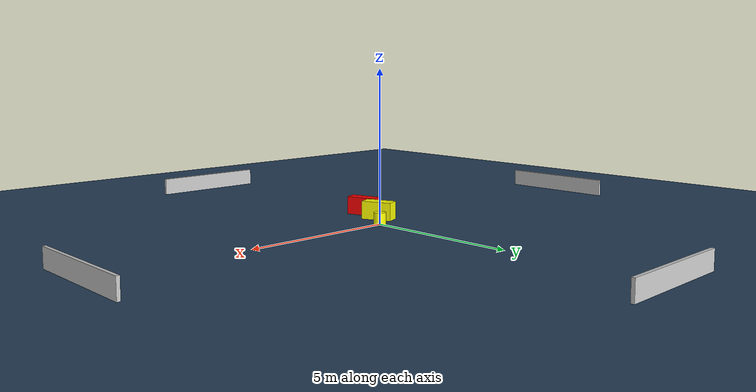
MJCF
<?xml version="1.0" ?>
<mujoco model="generated_environment">
  <option timestep="0.01" integrator="RK4" cone="elliptic"/>
  <default>
    <geom density="1"/>
  </default>
  <asset>
    <texture builtin="gradient" height="3072" name="skybox" rgb1="0.3 0.5 0.7" rgb2="0 0 0" type="skybox" width="512"/>
    <texture builtin="checker" height="300" name="groundplane" rgb1="0.2 0.3 0.4" rgb2="0.1 0.2 0.3" type="2d" width="300"/>
    <material name="groundplane" reflectance="0.2" texrepeat="5 5" texture="groundplane"/>
  </asset>
  <worldbody>
    <light dir="0 0 -1" directional="true" pos="0 0 1.5"/>
    <geom condim="3" friction="0.5 0.005 0.001" material="groundplane" name="floor" pos="0 0 0" size="0 0 0.05" type="plane"/>
    <body name="walls">
      <geom name="wall_1" condim="4" pos="-10.0 0.0 0.3" rgba="0.800000011920929 0.800000011920929 0.800000011920929 1.0" size="0.05 2.0 0.3" type="box"/>
      <geom name="wall_2" condim="4" pos="10.0 0.0 0.3" rgba="0.800000011920929 0.800000011920929 0.800000011920929 1.0" size="0.05 2.0 0.3" type="box"/>
      <geom name="wall_3" condim="4" pos="0.0 -10.0 0.3" rgba="0.800000011920929 0.800000011920929 0.800000011920929 1.0" size="2.0 0.05 0.3" type="box"/>
      <geom name="wall_4" condim="4" pos="0.0 10.0 0.3" rgba="0.800000011920929 0.800000011920929 0.800000011920929 1.0" size="2.0 0.05 0.3" type="box"/>
    </body>
    <body name="robot">
      <joint name="joint_x" type="slide" pos="0 0 0" axis="1 0 0"/>
      <joint name="joint_y" type="slide" pos="0 0 0" axis="0 1 0"/>
      <geom name="robot" type="cylinder" pos="0.0 0.0 0.2" size="0.2 0.2 0.0" mass="5.0" friction="1.0 0.005 0.0001" condim="4" rgba="1.0 1.0 0.0 1.0"/>
    </body>
    <body name="obstacle_1_movable">
      <geom name="obstacle_1_movable" condim="4" pos="-0.6078946640457171 -0.6743500148381261 0.3" euler="0 0 21.020866985906284" friction="0.0 0.005 0.001" rgba="1.0 1.0 0.0 1.0" size="0.23556806967832106 0.5138753038257559 0.3" type="box" mass="0.1"/>
      <joint type="free"/>
    </body>
    <body name="obstacle_2_static">
      <geom name="obstacle_2_static" condim="4" pos="-0.8201200705991019 -1.6493179830953801 0.3" euler="0 0 196.44524402823427" friction="0.0 0.005 0.001" rgba="1.0 0.0 0.0 1.0" size="0.21206256269051008 0.5118583105672354 0.3" type="box"/>
    </body>
  </worldbody>
  <actuator>
    <motor name="actuator_x" joint="joint_x" gear="1" ctrlrange="-1 1"/>
    <motor name="actuator_y" joint="joint_y" gear="1" ctrlrange="-1 1"/>
  </actuator>
</mujoco>
